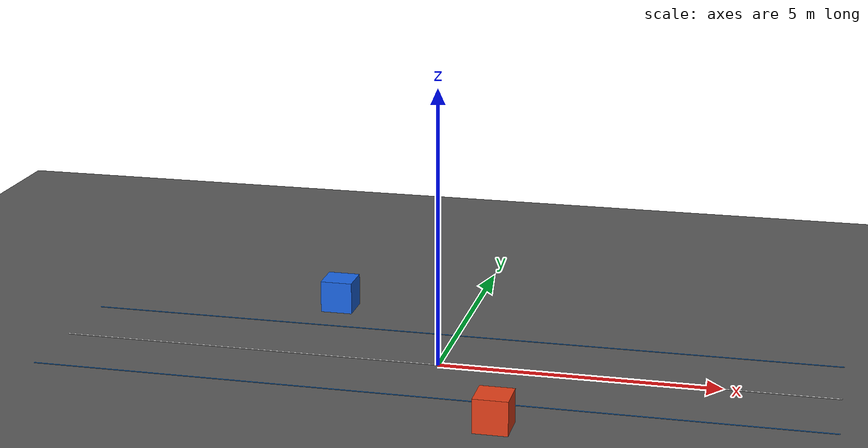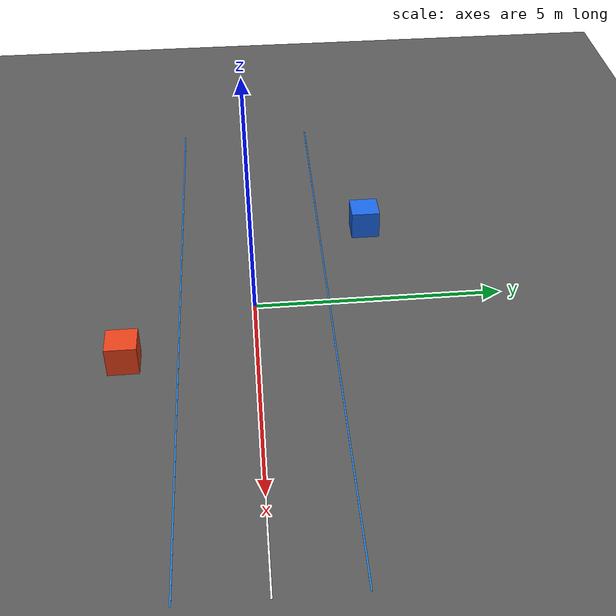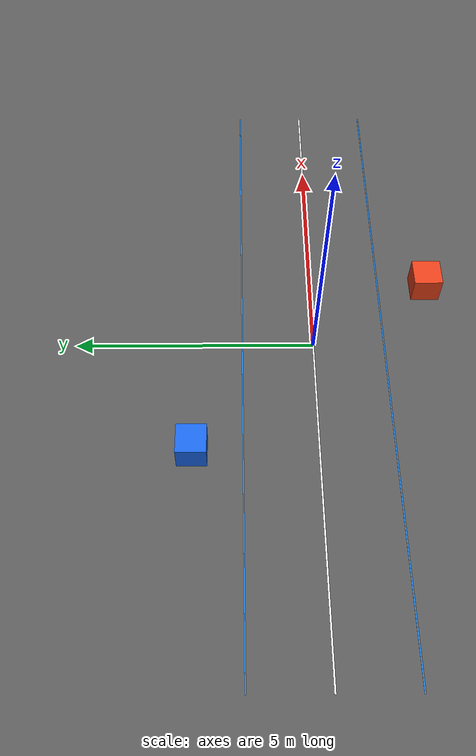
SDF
<?xml version="1.0"?>
<sdf version="1.8">
  <world name="dynamics_test">
    <!-- Open-field test track for reversible longitudinal and steering motion. -->
    <physics name="1ms" type="ignored">
      <max_step_size>0.001</max_step_size>
      <real_time_factor>1.0</real_time_factor>
      <real_time_update_rate>1000</real_time_update_rate>
    </physics>
    <plugin filename="gz-sim-physics-system" name="gz::sim::systems::Physics"/>
    <plugin filename="gz-sim-imu-system" name="gz::sim::systems::Imu"/>
    <plugin filename="gz-sim-user-commands-system" name="gz::sim::systems::UserCommands"/>
    <plugin filename="gz-sim-scene-broadcaster-system" name="gz::sim::systems::SceneBroadcaster"/>
    <plugin filename="gz-sim-sensors-system" name="gz::sim::systems::Sensors">
      <render_engine>ogre2</render_engine>
    </plugin>

    <light type="directional" name="sun">
      <cast_shadows>true</cast_shadows>
      <pose>0 0 8 0 0 0</pose>
      <diffuse>0.95 0.95 0.95 1</diffuse>
      <specular>0.25 0.25 0.25 1</specular>
      <attenuation><range>1000</range><constant>0.9</constant><linear>0.01</linear><quadratic>0.001</quadratic></attenuation>
      <direction>-0.5 0.1 -0.9</direction>
    </light>

    <model name="ground_plane">
      <static>true</static>
      <link name="link">
        <collision name="collision"><geometry><plane><normal>0 0 1</normal><size>60 30</size></plane></geometry>
          <surface><friction><ode><mu>1.5</mu><mu2>1.5</mu2></ode></friction></surface>
        </collision>
        <visual name="visual"><geometry><plane><normal>0 0 1</normal><size>60 30</size></plane></geometry>
          <material><ambient>0.35 0.35 0.35 1</ambient><diffuse>0.35 0.35 0.35 1</diffuse></material>
        </visual>
      </link>
    </model>

    <!-- Visual-only lane stripes make steering and reverse motion obvious. -->
    <model name="test_lane_markings">
      <static>true</static>
      <link name="link">
        <visual name="centerline"><pose>0 0 0.003 0 0 0</pose><geometry><box><size>14 0.035 0.006</size></box></geometry>
          <material><ambient>0.95 0.95 0.95 1</ambient><diffuse>0.95 0.95 0.95 1</diffuse></material>
        </visual>
        <visual name="left_lane"><pose>0 1.5 0.003 0 0 0</pose><geometry><box><size>14 0.025 0.006</size></box></geometry>
          <material><ambient>0.15 0.55 0.95 1</ambient><diffuse>0.15 0.55 0.95 1</diffuse></material>
        </visual>
        <visual name="right_lane"><pose>0 -1.5 0.003 0 0 0</pose><geometry><box><size>14 0.025 0.006</size></box></geometry>
          <material><ambient>0.15 0.55 0.95 1</ambient><diffuse>0.15 0.55 0.95 1</diffuse></material>
        </visual>
      </link>
    </model>

    <!-- Side reference blocks give the 360-degree lidar finite returns without
         placing a collision in the reversible test path. -->
    <model name="left_reference_block"><static>true</static><pose>-2.5 2.5 0.3 0 0 0</pose><link name="link">
      <collision name="collision"><geometry><box><size>0.6 0.6 0.6</size></box></geometry></collision>
      <visual name="visual"><geometry><box><size>0.6 0.6 0.6</size></box></geometry><material><ambient>0.1 0.4 0.9 1</ambient><diffuse>0.1 0.4 0.9 1</diffuse></material></visual>
    </link></model>
    <model name="right_reference_block"><static>true</static><pose>1.5 -2.5 0.3 0 0 0</pose><link name="link">
      <collision name="collision"><geometry><box><size>0.6 0.6 0.6</size></box></geometry></collision>
      <visual name="visual"><geometry><box><size>0.6 0.6 0.6</size></box></geometry><material><ambient>0.9 0.25 0.1 1</ambient><diffuse>0.9 0.25 0.1 1</diffuse></material></visual>
    </link></model>
  </world>
</sdf>
